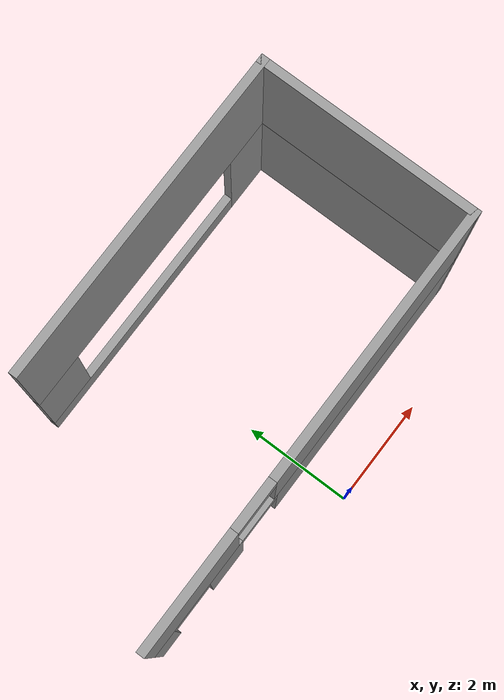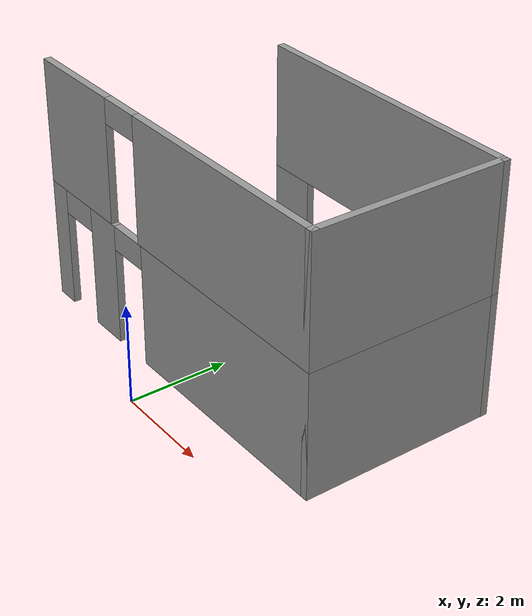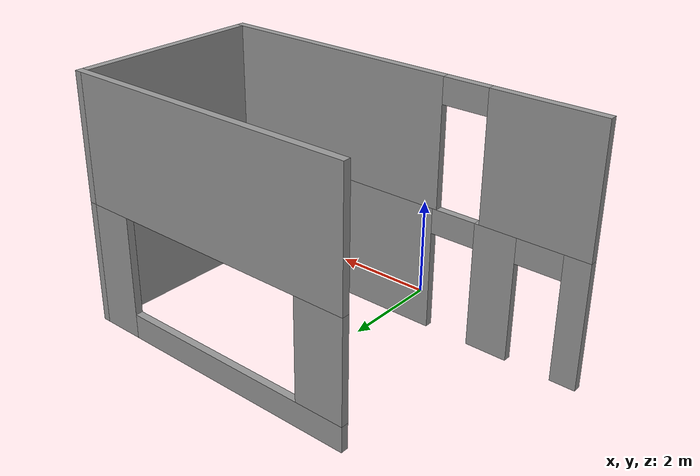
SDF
<sdf version="1.6">
 <model name="testbuilding">
  <link name="Wall_0">
   <pose>0 0.925 0 0 -0 0</pose>
   <visual name="Wall_0_Visual_0">
    <pose>-3.75003 0 1.25 0 -0 0</pose>
    <geometry><box><size>0.499937 0.15 2.5</size></box></geometry>
    <material>
     <script><uri>file://media/materials/scripts/gazebo.material</uri><name>Gazebo/Grey</name></script>
     <ambient>1 1 1 1</ambient>
    </material>
    <meta><layer>0</layer></meta>
   </visual>
   <visual name="Wall_0_Visual_1">
    <pose>-2.17972 0 1.25 0 -0 0</pose>
    <geometry><box><size>0.840684 0.15 2.5</size></box></geometry>
    <material>
     <script><uri>file://media/materials/scripts/gazebo.material</uri><name>Gazebo/Grey</name></script>
     <ambient>1 1 1 1</ambient>
    </material>
    <meta><layer>0</layer></meta>
   </visual>
   <visual name="Wall_0_Visual_2">
    <pose>1.57031 0 1.25 0 -0 0</pose>
    <geometry><box><size>4.85938 0.15 2.5</size></box></geometry>
    <material>
     <script><uri>file://media/materials/scripts/gazebo.material</uri><name>Gazebo/Grey</name></script>
     <ambient>1 1 1 1</ambient>
    </material>
    <meta><layer>0</layer></meta>
   </visual>
   <visual name="Wall_0_Visual_3">
    <pose>-3.05006 0 2.25 0 -0 0</pose>
    <geometry><box><size>0.9 0.15 0.5</size></box></geometry>
    <material>
     <script><uri>file://media/materials/scripts/gazebo.material</uri><name>Gazebo/Grey</name></script>
     <ambient>1 1 1 1</ambient>
    </material>
    <meta><layer>0</layer></meta>
   </visual>
   <visual name="Wall_0_Visual_4">
    <pose>-1.30938 0 2.25 0 -0 0</pose>
    <geometry><box><size>0.9 0.15 0.5</size></box></geometry>
    <material>
     <script><uri>file://media/materials/scripts/gazebo.material</uri><name>Gazebo/Grey</name></script>
     <ambient>1 1 1 1</ambient>
    </material>
    <meta><layer>0</layer></meta>
   </visual>
   <collision name="Wall_0_Collision_3">
    <pose>-3.05006 0 2.25 0 -0 0</pose>
    <geometry><box><size>0.9 0.15 0.5</size></box></geometry>
    <surface>
     <friction>
      <ode><mu>1</mu><mu2>1</mu2><fdir1>0 0 0</fdir1><slip1>0</slip1><slip2>0</slip2></ode>
      <torsional>
       <coefficient>1</coefficient>
       <patch_radius>0</patch_radius>
       <surface_radius>0</surface_radius>
       <use_patch_radius>1</use_patch_radius>
       <ode><slip>0</slip></ode>
      </torsional>
     </friction>
     <bounce><restitution_coefficient>0</restitution_coefficient><threshold>1e+06</threshold></bounce>
     <contact>
      <collide_without_contact>0</collide_without_contact>
      <collide_without_contact_bitmask>1</collide_without_contact_bitmask>
      <collide_bitmask>1</collide_bitmask>
      <ode>
       <soft_cfm>0</soft_cfm>
       <soft_erp>0.2</soft_erp>
       <kp>1e+13</kp>
       <kd>1</kd>
       <max_vel>0.01</max_vel>
       <min_depth>0</min_depth>
      </ode>
      <bullet>
       <split_impulse>1</split_impulse>
       <split_impulse_penetration_threshold>-0.01</split_impulse_penetration_threshold>
       <soft_cfm>0</soft_cfm>
       <soft_erp>0.2</soft_erp>
       <kp>1e+13</kp>
       <kd>1</kd>
      </bullet>
     </contact>
    </surface>
   </collision>
   <collision name="Wall_0_Collision_0">
    <pose>-3.75003 0 1.25 0 -0 0</pose>
    <geometry><box><size>0.499937 0.15 2.5</size></box></geometry>
    <surface>
     <friction>
      <ode><mu>1</mu><mu2>1</mu2><fdir1>0 0 0</fdir1><slip1>0</slip1><slip2>0</slip2></ode>
      <torsional>
       <coefficient>1</coefficient>
       <patch_radius>0</patch_radius>
       <surface_radius>0</surface_radius>
       <use_patch_radius>1</use_patch_radius>
       <ode><slip>0</slip></ode>
      </torsional>
     </friction>
     <bounce><restitution_coefficient>0</restitution_coefficient><threshold>1e+06</threshold></bounce>
     <contact>
      <collide_without_contact>0</collide_without_contact>
      <collide_without_contact_bitmask>1</collide_without_contact_bitmask>
      <collide_bitmask>1</collide_bitmask>
      <ode>
       <soft_cfm>0</soft_cfm>
       <soft_erp>0.2</soft_erp>
       <kp>1e+13</kp>
       <kd>1</kd>
       <max_vel>0.01</max_vel>
       <min_depth>0</min_depth>
      </ode>
      <bullet>
       <split_impulse>1</split_impulse>
       <split_impulse_penetration_threshold>-0.01</split_impulse_penetration_threshold>
       <soft_cfm>0</soft_cfm>
       <soft_erp>0.2</soft_erp>
       <kp>1e+13</kp>
       <kd>1</kd>
      </bullet>
     </contact>
    </surface>
   </collision>
   <collision name="Wall_0_Collision_1">
    <pose>-2.17972 0 1.25 0 -0 0</pose>
    <geometry><box><size>0.840684 0.15 2.5</size></box></geometry>
    <surface>
     <friction>
      <ode><mu>1</mu><mu2>1</mu2><fdir1>0 0 0</fdir1><slip1>0</slip1><slip2>0</slip2></ode>
      <torsional>
       <coefficient>1</coefficient>
       <patch_radius>0</patch_radius>
       <surface_radius>0</surface_radius>
       <use_patch_radius>1</use_patch_radius>
       <ode><slip>0</slip></ode>
      </torsional>
     </friction>
     <bounce><restitution_coefficient>0</restitution_coefficient><threshold>1e+06</threshold></bounce>
     <contact>
      <collide_without_contact>0</collide_without_contact>
      <collide_without_contact_bitmask>1</collide_without_contact_bitmask>
      <collide_bitmask>1</collide_bitmask>
      <ode>
       <soft_cfm>0</soft_cfm>
       <soft_erp>0.2</soft_erp>
       <kp>1e+13</kp>
       <kd>1</kd>
       <max_vel>0.01</max_vel>
       <min_depth>0</min_depth>
      </ode>
      <bullet>
       <split_impulse>1</split_impulse>
       <split_impulse_penetration_threshold>-0.01</split_impulse_penetration_threshold>
       <soft_cfm>0</soft_cfm>
       <soft_erp>0.2</soft_erp>
       <kp>1e+13</kp>
       <kd>1</kd>
      </bullet>
     </contact>
    </surface>
   </collision>
   <collision name="Wall_0_Collision_2">
    <pose>1.57031 0 1.25 0 -0 0</pose>
    <geometry><box><size>4.85938 0.15 2.5</size></box></geometry>
    <surface>
     <friction>
      <ode><mu>1</mu><mu2>1</mu2><fdir1>0 0 0</fdir1><slip1>0</slip1><slip2>0</slip2></ode>
      <torsional>
       <coefficient>1</coefficient>
       <patch_radius>0</patch_radius>
       <surface_radius>0</surface_radius>
       <use_patch_radius>1</use_patch_radius>
       <ode><slip>0</slip></ode>
      </torsional>
     </friction>
     <bounce><restitution_coefficient>0</restitution_coefficient><threshold>1e+06</threshold></bounce>
     <contact>
      <collide_without_contact>0</collide_without_contact>
      <collide_without_contact_bitmask>1</collide_without_contact_bitmask>
      <collide_bitmask>1</collide_bitmask>
      <ode>
       <soft_cfm>0</soft_cfm>
       <soft_erp>0.2</soft_erp>
       <kp>1e+13</kp>
       <kd>1</kd>
       <max_vel>0.01</max_vel>
       <min_depth>0</min_depth>
      </ode>
      <bullet>
       <split_impulse>1</split_impulse>
       <split_impulse_penetration_threshold>-0.01</split_impulse_penetration_threshold>
       <soft_cfm>0</soft_cfm>
       <soft_erp>0.2</soft_erp>
       <kp>1e+13</kp>
       <kd>1</kd>
      </bullet>
     </contact>
    </surface>
   </collision>
   <collision name="Wall_0_Collision_4">
    <pose>-1.30938 0 2.25 0 -0 0</pose>
    <geometry><box><size>0.9 0.15 0.5</size></box></geometry>
    <surface>
     <friction>
      <ode><mu>1</mu><mu2>1</mu2><fdir1>0 0 0</fdir1><slip1>0</slip1><slip2>0</slip2></ode>
      <torsional>
       <coefficient>1</coefficient>
       <patch_radius>0</patch_radius>
       <surface_radius>0</surface_radius>
       <use_patch_radius>1</use_patch_radius>
       <ode><slip>0</slip></ode>
      </torsional>
     </friction>
     <bounce><restitution_coefficient>0</restitution_coefficient><threshold>1e+06</threshold></bounce>
     <contact>
      <collide_without_contact>0</collide_without_contact>
      <collide_without_contact_bitmask>1</collide_without_contact_bitmask>
      <collide_bitmask>1</collide_bitmask>
      <ode>
       <soft_cfm>0</soft_cfm>
       <soft_erp>0.2</soft_erp>
       <kp>1e+13</kp>
       <kd>1</kd>
       <max_vel>0.01</max_vel>
       <min_depth>0</min_depth>
      </ode>
      <bullet>
       <split_impulse>1</split_impulse>
       <split_impulse_penetration_threshold>-0.01</split_impulse_penetration_threshold>
       <soft_cfm>0</soft_cfm>
       <soft_erp>0.2</soft_erp>
       <kp>1e+13</kp>
       <kd>1</kd>
      </bullet>
     </contact>
    </surface>
   </collision>
  </link>
  <link name="Wall_21">
   <pose>0 0.925 2.5 0 -0 0</pose>
   <visual name="Wall_21_Visual_0">
    <pose>-2.92353 0 1.25 0 -0 0</pose>
    <geometry><box><size>2.15294 0.15 2.5</size></box></geometry>
    <material>
     <script><uri>file://media/materials/scripts/gazebo.material</uri><name>Gazebo/Grey</name></script>
     <ambient>1 1 1 1</ambient>
    </material>
    <meta><layer>1</layer></meta>
   </visual>
   <visual name="Wall_21_Visual_1">
    <pose>1.52647 0 1.25 0 -0 0</pose>
    <geometry><box><size>4.94705 0.15 2.5</size></box></geometry>
    <material>
     <script><uri>file://media/materials/scripts/gazebo.material</uri><name>Gazebo/Grey</name></script>
     <ambient>1 1 1 1</ambient>
    </material>
    <meta><layer>1</layer></meta>
   </visual>
   <visual name="Wall_21_Visual_2">
    <pose>-1.39705 0 2.25 0 -0 0</pose>
    <geometry><box><size>0.9 0.15 0.5</size></box></geometry>
    <material>
     <script><uri>file://media/materials/scripts/gazebo.material</uri><name>Gazebo/Grey</name></script>
     <ambient>1 1 1 1</ambient>
    </material>
    <meta><layer>1</layer></meta>
   </visual>
   <collision name="Wall_21_Collision_0">
    <pose>-2.92353 0 1.25 0 -0 0</pose>
    <geometry><box><size>2.15294 0.15 2.5</size></box></geometry>
    <surface>
     <friction>
      <ode><mu>1</mu><mu2>1</mu2><fdir1>0 0 0</fdir1><slip1>0</slip1><slip2>0</slip2></ode>
      <torsional>
       <coefficient>1</coefficient>
       <patch_radius>0</patch_radius>
       <surface_radius>0</surface_radius>
       <use_patch_radius>1</use_patch_radius>
       <ode><slip>0</slip></ode>
      </torsional>
     </friction>
     <bounce><restitution_coefficient>0</restitution_coefficient><threshold>1e+06</threshold></bounce>
     <contact>
      <collide_without_contact>0</collide_without_contact>
      <collide_without_contact_bitmask>1</collide_without_contact_bitmask>
      <collide_bitmask>1</collide_bitmask>
      <ode>
       <soft_cfm>0</soft_cfm>
       <soft_erp>0.2</soft_erp>
       <kp>1e+13</kp>
       <kd>1</kd>
       <max_vel>0.01</max_vel>
       <min_depth>0</min_depth>
      </ode>
      <bullet>
       <split_impulse>1</split_impulse>
       <split_impulse_penetration_threshold>-0.01</split_impulse_penetration_threshold>
       <soft_cfm>0</soft_cfm>
       <soft_erp>0.2</soft_erp>
       <kp>1e+13</kp>
       <kd>1</kd>
      </bullet>
     </contact>
    </surface>
   </collision>
   <collision name="Wall_21_Collision_1">
    <pose>1.52647 0 1.25 0 -0 0</pose>
    <geometry><box><size>4.94705 0.15 2.5</size></box></geometry>
    <surface>
     <friction>
      <ode><mu>1</mu><mu2>1</mu2><fdir1>0 0 0</fdir1><slip1>0</slip1><slip2>0</slip2></ode>
      <torsional>
       <coefficient>1</coefficient>
       <patch_radius>0</patch_radius>
       <surface_radius>0</surface_radius>
       <use_patch_radius>1</use_patch_radius>
       <ode><slip>0</slip></ode>
      </torsional>
     </friction>
     <bounce><restitution_coefficient>0</restitution_coefficient><threshold>1e+06</threshold></bounce>
     <contact>
      <collide_without_contact>0</collide_without_contact>
      <collide_without_contact_bitmask>1</collide_without_contact_bitmask>
      <collide_bitmask>1</collide_bitmask>
      <ode>
       <soft_cfm>0</soft_cfm>
       <soft_erp>0.2</soft_erp>
       <kp>1e+13</kp>
       <kd>1</kd>
       <max_vel>0.01</max_vel>
       <min_depth>0</min_depth>
      </ode>
      <bullet>
       <split_impulse>1</split_impulse>
       <split_impulse_penetration_threshold>-0.01</split_impulse_penetration_threshold>
       <soft_cfm>0</soft_cfm>
       <soft_erp>0.2</soft_erp>
       <kp>1e+13</kp>
       <kd>1</kd>
      </bullet>
     </contact>
    </surface>
   </collision>
   <collision name="Wall_21_Collision_2">
    <pose>-1.39705 0 2.25 0 -0 0</pose>
    <geometry><box><size>0.9 0.15 0.5</size></box></geometry>
    <surface>
     <friction>
      <ode><mu>1</mu><mu2>1</mu2><fdir1>0 0 0</fdir1><slip1>0</slip1><slip2>0</slip2></ode>
      <torsional>
       <coefficient>1</coefficient>
       <patch_radius>0</patch_radius>
       <surface_radius>0</surface_radius>
       <use_patch_radius>1</use_patch_radius>
       <ode><slip>0</slip></ode>
      </torsional>
     </friction>
     <bounce><restitution_coefficient>0</restitution_coefficient><threshold>1e+06</threshold></bounce>
     <contact>
      <collide_without_contact>0</collide_without_contact>
      <collide_without_contact_bitmask>1</collide_without_contact_bitmask>
      <collide_bitmask>1</collide_bitmask>
      <ode>
       <soft_cfm>0</soft_cfm>
       <soft_erp>0.2</soft_erp>
       <kp>1e+13</kp>
       <kd>1</kd>
       <max_vel>0.01</max_vel>
       <min_depth>0</min_depth>
      </ode>
      <bullet>
       <split_impulse>1</split_impulse>
       <split_impulse_penetration_threshold>-0.01</split_impulse_penetration_threshold>
       <soft_cfm>0</soft_cfm>
       <soft_erp>0.2</soft_erp>
       <kp>1e+13</kp>
       <kd>1</kd>
      </bullet>
     </contact>
    </surface>
   </collision>
  </link>
  <link name="Wall_25">
   <pose>3.925 2.85 2.5 0 -0 1.5708</pose>
   <visual name="Wall_25_Visual">
    <pose>0 0 1.25 0 -0 0</pose>
    <geometry><box><size>4 0.15 2.5</size></box></geometry>
    <material>
     <script><uri>file://media/materials/scripts/gazebo.material</uri><name>Gazebo/Grey</name></script>
     <ambient>1 1 1 1</ambient>
    </material>
    <meta><layer>1</layer></meta>
   </visual>
   <collision name="Wall_25_Collision">
    <pose>0 0 1.25 0 -0 0</pose>
    <geometry><box><size>4 0.15 2.5</size></box></geometry>
    <surface>
     <friction>
      <ode><mu>1</mu><mu2>1</mu2><fdir1>0 0 0</fdir1><slip1>0</slip1><slip2>0</slip2></ode>
      <torsional>
       <coefficient>1</coefficient>
       <patch_radius>0</patch_radius>
       <surface_radius>0</surface_radius>
       <use_patch_radius>1</use_patch_radius>
       <ode><slip>0</slip></ode>
      </torsional>
     </friction>
     <bounce><restitution_coefficient>0</restitution_coefficient><threshold>1e+06</threshold></bounce>
     <contact>
      <collide_without_contact>0</collide_without_contact>
      <collide_without_contact_bitmask>1</collide_without_contact_bitmask>
      <collide_bitmask>1</collide_bitmask>
      <ode>
       <soft_cfm>0</soft_cfm>
       <soft_erp>0.2</soft_erp>
       <kp>1e+13</kp>
       <kd>1</kd>
       <max_vel>0.01</max_vel>
       <min_depth>0</min_depth>
      </ode>
      <bullet>
       <split_impulse>1</split_impulse>
       <split_impulse_penetration_threshold>-0.01</split_impulse_penetration_threshold>
       <soft_cfm>0</soft_cfm>
       <soft_erp>0.2</soft_erp>
       <kp>1e+13</kp>
       <kd>1</kd>
      </bullet>
     </contact>
    </surface>
   </collision>
  </link>
  <link name="Wall_26">
   <pose>1 4.775 2.5 0 -0 3.14159</pose>
   <visual name="Wall_26_Visual">
    <pose>0 0 1.25 0 -0 0</pose>
    <geometry><box><size>6 0.15 2.5</size></box></geometry>
    <material>
     <script><uri>file://media/materials/scripts/gazebo.material</uri><name>Gazebo/Grey</name></script>
     <ambient>1 1 1 1</ambient>
    </material>
    <meta><layer>1</layer></meta>
   </visual>
   <collision name="Wall_26_Collision">
    <pose>0 0 1.25 0 -0 0</pose>
    <geometry><box><size>6 0.15 2.5</size></box></geometry>
    <surface>
     <friction>
      <ode><mu>1</mu><mu2>1</mu2><fdir1>0 0 0</fdir1><slip1>0</slip1><slip2>0</slip2></ode>
      <torsional>
       <coefficient>1</coefficient>
       <patch_radius>0</patch_radius>
       <surface_radius>0</surface_radius>
       <use_patch_radius>1</use_patch_radius>
       <ode><slip>0</slip></ode>
      </torsional>
     </friction>
     <bounce><restitution_coefficient>0</restitution_coefficient><threshold>1e+06</threshold></bounce>
     <contact>
      <collide_without_contact>0</collide_without_contact>
      <collide_without_contact_bitmask>1</collide_without_contact_bitmask>
      <collide_bitmask>1</collide_bitmask>
      <ode>
       <soft_cfm>0</soft_cfm>
       <soft_erp>0.2</soft_erp>
       <kp>1e+13</kp>
       <kd>1</kd>
       <max_vel>0.01</max_vel>
       <min_depth>0</min_depth>
      </ode>
      <bullet>
       <split_impulse>1</split_impulse>
       <split_impulse_penetration_threshold>-0.01</split_impulse_penetration_threshold>
       <soft_cfm>0</soft_cfm>
       <soft_erp>0.2</soft_erp>
       <kp>1e+13</kp>
       <kd>1</kd>
      </bullet>
     </contact>
    </surface>
   </collision>
  </link>
  <link name="Wall_6">
   <pose>3.925 2.85 0 0 -0 1.5708</pose>
   <visual name="Wall_6_Visual">
    <pose>0 0 1.25 0 -0 0</pose>
    <geometry><box><size>4 0.15 2.5</size></box></geometry>
    <material>
     <script><uri>file://media/materials/scripts/gazebo.material</uri><name>Gazebo/Grey</name></script>
     <ambient>1 1 1 1</ambient>
    </material>
    <meta><layer>0</layer></meta>
   </visual>
   <collision name="Wall_6_Collision">
    <pose>0 0 1.25 0 -0 0</pose>
    <geometry><box><size>4 0.15 2.5</size></box></geometry>
    <surface>
     <friction>
      <ode><mu>1</mu><mu2>1</mu2><fdir1>0 0 0</fdir1><slip1>0</slip1><slip2>0</slip2></ode>
      <torsional>
       <coefficient>1</coefficient>
       <patch_radius>0</patch_radius>
       <surface_radius>0</surface_radius>
       <use_patch_radius>1</use_patch_radius>
       <ode><slip>0</slip></ode>
      </torsional>
     </friction>
     <bounce><restitution_coefficient>0</restitution_coefficient><threshold>1e+06</threshold></bounce>
     <contact>
      <collide_without_contact>0</collide_without_contact>
      <collide_without_contact_bitmask>1</collide_without_contact_bitmask>
      <collide_bitmask>1</collide_bitmask>
      <ode>
       <soft_cfm>0</soft_cfm>
       <soft_erp>0.2</soft_erp>
       <kp>1e+13</kp>
       <kd>1</kd>
       <max_vel>0.01</max_vel>
       <min_depth>0</min_depth>
      </ode>
      <bullet>
       <split_impulse>1</split_impulse>
       <split_impulse_penetration_threshold>-0.01</split_impulse_penetration_threshold>
       <soft_cfm>0</soft_cfm>
       <soft_erp>0.2</soft_erp>
       <kp>1e+13</kp>
       <kd>1</kd>
      </bullet>
     </contact>
    </surface>
   </collision>
  </link>
  <link name="Wall_7">
   <pose>1 4.775 0 0 -0 3.14159</pose>
   <visual name="Wall_7_Visual_0">
    <pose>-2.49357 0 1.25 0 -0 0</pose>
    <geometry><box><size>1.01286 0.15 2.5</size></box></geometry>
    <material>
     <script><uri>file://media/materials/scripts/gazebo.material</uri><name>Gazebo/Grey</name></script>
     <ambient>1 1 1 1</ambient>
    </material>
    <meta><layer>0</layer></meta>
   </visual>
   <visual name="Wall_7_Visual_1">
    <pose>0.506429 0 0.25 0 -0 0</pose>
    <geometry><box><size>4.98714 0.15 0.5</size></box></geometry>
    <material>
     <script><uri>file://media/materials/scripts/gazebo.material</uri><name>Gazebo/Grey</name></script>
     <ambient>1 1 1 1</ambient>
    </material>
    <meta><layer>0</layer></meta>
   </visual>
   <visual name="Wall_7_Visual_2">
    <pose>2.50643 0 1.5 0 -0 0</pose>
    <geometry><box><size>0.987143 0.15 2</size></box></geometry>
    <material>
     <script><uri>file://media/materials/scripts/gazebo.material</uri><name>Gazebo/Grey</name></script>
     <ambient>1 1 1 1</ambient>
    </material>
    <meta><layer>0</layer></meta>
   </visual>
   <collision name="Wall_7_Collision_1">
    <pose>0.506429 0 0.25 0 -0 0</pose>
    <geometry><box><size>4.98714 0.15 0.5</size></box></geometry>
    <surface>
     <friction>
      <ode><mu>1</mu><mu2>1</mu2><fdir1>0 0 0</fdir1><slip1>0</slip1><slip2>0</slip2></ode>
      <torsional>
       <coefficient>1</coefficient>
       <patch_radius>0</patch_radius>
       <surface_radius>0</surface_radius>
       <use_patch_radius>1</use_patch_radius>
       <ode><slip>0</slip></ode>
      </torsional>
     </friction>
     <bounce><restitution_coefficient>0</restitution_coefficient><threshold>1e+06</threshold></bounce>
     <contact>
      <collide_without_contact>0</collide_without_contact>
      <collide_without_contact_bitmask>1</collide_without_contact_bitmask>
      <collide_bitmask>1</collide_bitmask>
      <ode>
       <soft_cfm>0</soft_cfm>
       <soft_erp>0.2</soft_erp>
       <kp>1e+13</kp>
       <kd>1</kd>
       <max_vel>0.01</max_vel>
       <min_depth>0</min_depth>
      </ode>
      <bullet>
       <split_impulse>1</split_impulse>
       <split_impulse_penetration_threshold>-0.01</split_impulse_penetration_threshold>
       <soft_cfm>0</soft_cfm>
       <soft_erp>0.2</soft_erp>
       <kp>1e+13</kp>
       <kd>1</kd>
      </bullet>
     </contact>
    </surface>
   </collision>
   <collision name="Wall_7_Collision_0">
    <pose>-2.49357 0 1.25 0 -0 0</pose>
    <geometry><box><size>1.01286 0.15 2.5</size></box></geometry>
    <surface>
     <friction>
      <ode><mu>1</mu><mu2>1</mu2><fdir1>0 0 0</fdir1><slip1>0</slip1><slip2>0</slip2></ode>
      <torsional>
       <coefficient>1</coefficient>
       <patch_radius>0</patch_radius>
       <surface_radius>0</surface_radius>
       <use_patch_radius>1</use_patch_radius>
       <ode><slip>0</slip></ode>
      </torsional>
     </friction>
     <bounce><restitution_coefficient>0</restitution_coefficient><threshold>1e+06</threshold></bounce>
     <contact>
      <collide_without_contact>0</collide_without_contact>
      <collide_without_contact_bitmask>1</collide_without_contact_bitmask>
      <collide_bitmask>1</collide_bitmask>
      <ode>
       <soft_cfm>0</soft_cfm>
       <soft_erp>0.2</soft_erp>
       <kp>1e+13</kp>
       <kd>1</kd>
       <max_vel>0.01</max_vel>
       <min_depth>0</min_depth>
      </ode>
      <bullet>
       <split_impulse>1</split_impulse>
       <split_impulse_penetration_threshold>-0.01</split_impulse_penetration_threshold>
       <soft_cfm>0</soft_cfm>
       <soft_erp>0.2</soft_erp>
       <kp>1e+13</kp>
       <kd>1</kd>
      </bullet>
     </contact>
    </surface>
   </collision>
   <collision name="Wall_7_Collision_2">
    <pose>2.50643 0 1.5 0 -0 0</pose>
    <geometry><box><size>0.987143 0.15 2</size></box></geometry>
    <surface>
     <friction>
      <ode><mu>1</mu><mu2>1</mu2><fdir1>0 0 0</fdir1><slip1>0</slip1><slip2>0</slip2></ode>
      <torsional>
       <coefficient>1</coefficient>
       <patch_radius>0</patch_radius>
       <surface_radius>0</surface_radius>
       <use_patch_radius>1</use_patch_radius>
       <ode><slip>0</slip></ode>
      </torsional>
     </friction>
     <bounce><restitution_coefficient>0</restitution_coefficient><threshold>1e+06</threshold></bounce>
     <contact>
      <collide_without_contact>0</collide_without_contact>
      <collide_without_contact_bitmask>1</collide_without_contact_bitmask>
      <collide_bitmask>1</collide_bitmask>
      <ode>
       <soft_cfm>0</soft_cfm>
       <soft_erp>0.2</soft_erp>
       <kp>1e+13</kp>
       <kd>1</kd>
       <max_vel>0.01</max_vel>
       <min_depth>0</min_depth>
      </ode>
      <bullet>
       <split_impulse>1</split_impulse>
       <split_impulse_penetration_threshold>-0.01</split_impulse_penetration_threshold>
       <soft_cfm>0</soft_cfm>
       <soft_erp>0.2</soft_erp>
       <kp>1e+13</kp>
       <kd>1</kd>
      </bullet>
     </contact>
    </surface>
   </collision>
  </link>
  <static>1</static>
 </model>
</sdf>
